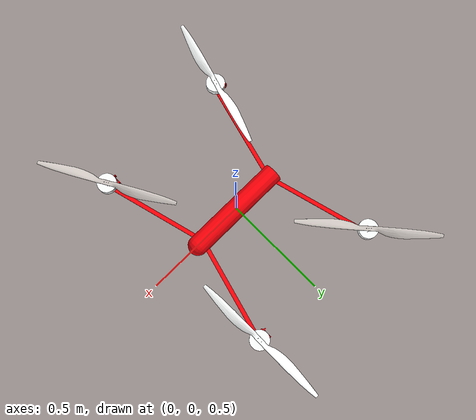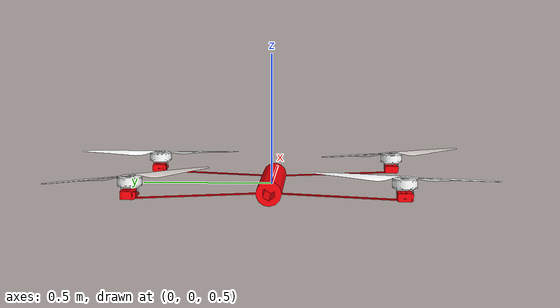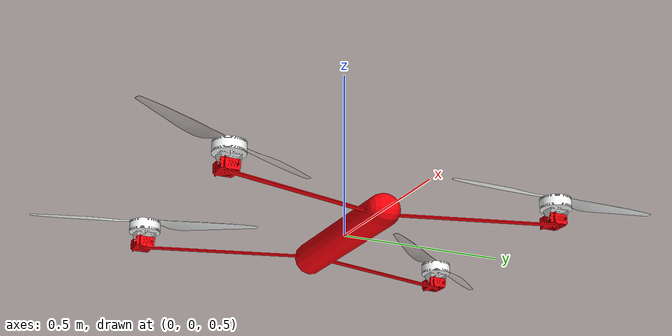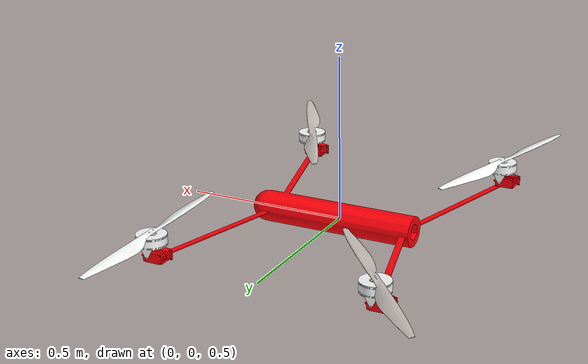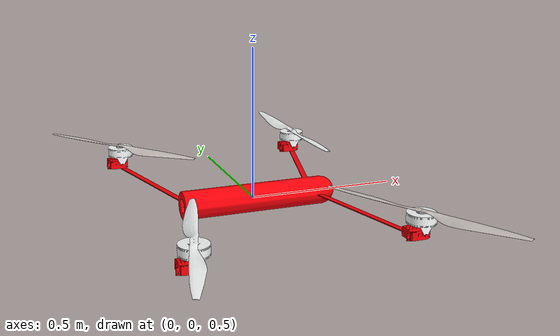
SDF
<sdf version='1.11'>
  <model name='MCTilt'>
    <link name='base_link'>
      <inertial>
        <pose>0.027452000000000001 0.0004910500450304307 0.50084027997368474 0 0 0</pose>
        <mass>11</mass>
        <inertia>
          <ixx>0.5</ixx>
          <ixy>-0.002301599999599837</ixy>
          <ixz>7.4672233422723444e-06</ixz>
          <iyy>0.52999999999886116</iyy>
          <iyz>-1.0614171776526529e-05</iyz>
          <izz>0.90000000000113878</izz>
        </inertia>
      </inertial>
      <collision name='base_link_fixed_joint_lump__drone_link_collision'>
        <pose>0 0 0.5 3.1415926000000001 0 0</pose>
        <geometry>
          <mesh>
            <scale>1 1 1</scale>
            <uri>model://mctilt/description/meshes/base_link.STL</uri>
          </mesh>
        </geometry>
      </collision>
      <visual name='base_link_fixed_joint_lump__drone_link_visual'>
        <pose>0 0 0.5 3.1415926000000001 0 0</pose>
        <geometry>
          <mesh>
            <scale>1 1 1</scale>
            <uri>model://mctilt/description/meshes/base_link.STL</uri>
          </mesh>
        </geometry>
        <material>
          <diffuse>1 0 0.0343137495 1</diffuse>
          <ambient>1 0 0.0343137495 1</ambient>
        </material>
      </visual>
      <sensor name='imu_sensor' type='imu'>
        <always_on>true</always_on>
        <update_rate>250</update_rate>
        <imu>
          <angular_velocity>
            <x>
              <noise type='gaussian'>
                <mean>0</mean>
                <stddev>0.00018665000000000001</stddev>
                <dynamic_bias_stddev>3.8785000000000002e-05</dynamic_bias_stddev>
                <dynamic_bias_correlation_time>1000</dynamic_bias_correlation_time>
              </noise>
            </x>
            <y>
              <noise type='gaussian'>
                <mean>0</mean>
                <stddev>0.00018665000000000001</stddev>
                <dynamic_bias_stddev>3.8785000000000002e-05</dynamic_bias_stddev>
                <dynamic_bias_correlation_time>1000</dynamic_bias_correlation_time>
              </noise>
            </y>
            <z>
              <noise type='gaussian'>
                <mean>0</mean>
                <stddev>0.00018665000000000001</stddev>
                <dynamic_bias_stddev>3.8785000000000002e-05</dynamic_bias_stddev>
                <dynamic_bias_correlation_time>1000</dynamic_bias_correlation_time>
              </noise>
            </z>
          </angular_velocity>
          <linear_acceleration>
            <x>
              <noise type='gaussian'>
                <mean>0</mean>
                <stddev>0.0018600000000000001</stddev>
                <dynamic_bias_stddev>0.0060000000000000001</dynamic_bias_stddev>
                <dynamic_bias_correlation_time>300</dynamic_bias_correlation_time>
              </noise>
            </x>
            <y>
              <noise type='gaussian'>
                <mean>0</mean>
                <stddev>0.0018600000000000001</stddev>
                <dynamic_bias_stddev>0.0060000000000000001</dynamic_bias_stddev>
                <dynamic_bias_correlation_time>300</dynamic_bias_correlation_time>
              </noise>
            </y>
            <z>
              <noise type='gaussian'>
                <mean>0</mean>
                <stddev>0.0018600000000000001</stddev>
                <dynamic_bias_stddev>0.0060000000000000001</dynamic_bias_stddev>
                <dynamic_bias_correlation_time>300</dynamic_bias_correlation_time>
              </noise>
            </z>
          </linear_acceleration>
        </imu>
        <pose>0 0 0.5 0 0 0</pose>
      </sensor>
      <sensor name='air_pressure_sensor' type='air_pressure'>
        <always_on>true</always_on>
        <update_rate>50</update_rate>
        <air_pressure>
          <pressure>
            <noise type='gaussian'>
              <mean>0</mean>
              <stddev>0.01</stddev>
            </noise>
          </pressure>
        </air_pressure>
        <pose>0 0 0.5 0 0 0</pose>
      </sensor>
      <sensor name='navsat_sensor' type='navsat'>
        <always_on>true</always_on>
        <update_rate>30</update_rate>
        <pose>0 0 0.5 0 0 0</pose>
      </sensor>
    </link>
    <joint name='servoJoint1' type='revolute'>
      <pose relative_to='base_link'>0.34150000000000003 -0.42158686875186091 0.51455002259275318
        1.570796280384771 2.6794896551551876e-08 0.52359877559829127</pose>
      <parent>base_link</parent>
      <child>servo_link1</child>
      <axis>
        <xyz>0.499999999999996 0 -0.86602540378444104</xyz>
        <limit>
          <lower>-inf</lower>
          <upper>inf</upper>
        </limit>
        <dynamics>
          <damping>2.5</damping>
          <friction>0</friction>
          <spring_reference>0</spring_reference>
          <spring_stiffness>0</spring_stiffness>
        </dynamics>
      </axis>
    </joint>
    <link name='servo_link1'>
      <pose relative_to='servoJoint1'>0 0 0 0 0 0</pose>
      <inertial>
        <pose>-0.030394161084991801 0.044362800205073799 0.052644161866179998 0 0 0</pose>
        <mass>0.2045176204237</mass>
        <inertia>
          <ixx>0.00011676716266782799</ixx>
          <ixy>-3.1115573759172102e-10</ixy>
          <ixz>1.14796079722263e-06</ixz>
          <iyy>0.00019759165397287</iyy>
          <iyz>3.3602938703528702e-10</iyz>
          <izz>0.000115441392663724</izz>
        </inertia>
      </inertial>
      <collision name='servo_link1_collision'>
        <pose>0 0 0 0 0 0</pose>
        <geometry>
          <mesh>
            <scale>1 1 1</scale>
            <uri>model://mctilt/description/meshes/servo_link1.STL</uri>
          </mesh>
        </geometry>
      </collision>
      <visual name='servo_link1_visual'>
        <pose>0 0 0 0 0 0</pose>
        <geometry>
          <mesh>
            <scale>1 1 1</scale>
            <uri>model://mctilt/description/meshes/servo_link1.STL</uri>
          </mesh>
        </geometry>
        <material>
          <diffuse>0.990196109 1 1 1</diffuse>
          <ambient>0.990196109 1 1 1</ambient>
        </material>
      </visual>
    </link>
    <joint name='prop_joint1' type='revolute'>
      <pose relative_to='servo_link1'>-0.0303940652342033 0.0500859736898727 0.052644065234203702
        -1.5707963000000003 -0.00180987006866113 0</pose>
      <parent>servo_link1</parent>
      <child>prop1</child>
      <axis>
        <xyz>0 0 1</xyz>
        <limit>
          <lower>-inf</lower>
          <upper>inf</upper>
        </limit>
        <dynamics>
          <spring_reference>0</spring_reference>
          <spring_stiffness>0</spring_stiffness>
        </dynamics>
      </axis>
    </joint>
    <link name='prop1'>
      <pose relative_to='prop_joint1'>0 0 0 0 0 0</pose>
      <inertial>
        <pose>3.0867990108429699e-09 0.0139527069710401 -3.4171043772346399e-09 1.5707963000000003 0
          0</pose>
        <mass>0.072762177004198902</mass>
        <inertia>
          <ixx>0.00216701471430116</ixx>
          <ixy>-4.74342285086133e-14</ixy>
          <ixz>7.2218875412027094e-05</ixz>
          <iyy>0.0021751198716782501</iyy>
          <iyz>5.8800230606604699e-14</iyz>
          <izz>9.3603438107692799e-06</izz>
        </inertia>
      </inertial>
      <collision name='prop1_collision'>
        <pose>0 0 0 1.5707963000000003 0 0</pose>
        <geometry>
          <mesh>
            <scale>1 1 1</scale>
            <uri>model://mctilt/description/meshes/prop1.STL</uri>
          </mesh>
        </geometry>
      </collision>
      <visual name='prop1_visual'>
        <pose>0 0 0 1.5707963000000003 0 0</pose>
        <geometry>
          <mesh>
            <scale>1 1 1</scale>
            <uri>model://mctilt/description/meshes/prop1.STL</uri>
          </mesh>
        </geometry>
        <material>
          <diffuse>0.799019635 0.769607902 0.75000006 1</diffuse>
          <ambient>0.799019635 0.769607902 0.75000006 1</ambient>
        </material>
      </visual>
    </link>
    <joint name='servoJoint2' type='revolute'>
      <pose relative_to='base_link'>-0.34150000000000003 0.42683687031132378 0.51454997712590045
        1.570796280384771 2.6794896551551876e-08 0.52359877559829127</pose>
      <parent>base_link</parent>
      <child>servo_link2</child>
      <axis>
        <xyz>0.499999999999995 0 -0.86602540378444104</xyz>
        <limit>
          <lower>-inf</lower>
          <upper>inf</upper>
        </limit>
        <dynamics>
          <damping>2.5</damping>
          <friction>0</friction>
          <spring_reference>0</spring_reference>
          <spring_stiffness>0</spring_stiffness>
        </dynamics>
      </axis>
    </joint>
    <link name='servo_link2'>
      <pose relative_to='servoJoint2'>0 0 0 0 0 0</pose>
      <inertial>
        <pose>0.030393969383415001 0.044362800205073799 -0.0526439686022276 0 0 0</pose>
        <mass>0.204517620423701</mass>
        <inertia>
          <ixx>0.00011676716266782799</ixx>
          <ixy>-3.1115573760911399e-10</ixy>
          <ixz>1.14796079722276e-06</ixz>
          <iyy>0.00019759165397287</iyy>
          <iyz>3.3602938703319901e-10</iyz>
          <izz>0.000115441392663724</izz>
        </inertia>
      </inertial>
      <collision name='servo_link2_collision'>
        <pose>0 0 0 0 0 0</pose>
        <geometry>
          <mesh>
            <scale>1 1 1</scale>
            <uri>model://mctilt/description/meshes/servo_link2.STL</uri>
          </mesh>
        </geometry>
      </collision>
      <visual name='servo_link2_visual'>
        <pose>0 0 0 0 0 0</pose>
        <geometry>
          <mesh>
            <scale>1 1 1</scale>
            <uri>model://mctilt/description/meshes/servo_link2.STL</uri>
          </mesh>
        </geometry>
        <material>
          <diffuse>0.990196109 1 1 1</diffuse>
          <ambient>0.990196109 1 1 1</ambient>
        </material>
      </visual>
    </link>
    <joint name='prop_joint2' type='revolute'>
      <pose relative_to='servo_link2'>0.0303940652342033 0.050085973689872797 -0.052644065234203702
        -1.5707963 0.18952959701793301 1.413082904031325e-17</pose>
      <parent>servo_link2</parent>
      <child>prop2</child>
      <axis>
        <xyz>0 0 1</xyz>
        <limit>
          <lower>-inf</lower>
          <upper>inf</upper>
        </limit>
        <dynamics>
          <spring_reference>0</spring_reference>
          <spring_stiffness>0</spring_stiffness>
        </dynamics>
      </axis>
    </joint>
    <link name='prop2'>
      <pose relative_to='prop_joint2'>0 0 0 0 0 0</pose>
      <inertial>
        <pose>3.7681505693498699e-09 0.013952818399974001 -3.8498872978465199e-09 1.5707963000000003
          0 0</pose>
        <mass>0.072764668272949501</mass>
        <inertia>
          <ixx>0.0021670147183279801</ixx>
          <ixy>-1.8902575953538199e-13</ixy>
          <ixz>7.2218861755525004e-05</ixz>
          <iyy>0.0021751198746171102</iyy>
          <iyz>1.8643502885731999e-13</iyz>
          <izz>9.3603414076551105e-06</izz>
        </inertia>
      </inertial>
      <collision name='prop2_collision'>
        <pose>0 0 0 1.5707963000000003 0 0</pose>
        <geometry>
          <mesh>
            <scale>1 1 1</scale>
            <uri>model://mctilt/description/meshes/prop2.STL</uri>
          </mesh>
        </geometry>
      </collision>
      <visual name='prop2_visual'>
        <pose>0 0 0 1.5707963000000003 0 0</pose>
        <geometry>
          <mesh>
            <scale>1 1 1</scale>
            <uri>model://mctilt/description/meshes/prop2.STL</uri>
          </mesh>
        </geometry>
        <material>
          <diffuse>0.799019635 0.769607902 0.75000006 1</diffuse>
          <ambient>0.799019635 0.769607902 0.75000006 1</ambient>
        </material>
      </visual>
    </link>
    <joint name='servoJoint3' type='revolute'>
      <pose relative_to='base_link'>0.34150000000000003 0.42683687031132278 0.51454997712590045
        1.5707962803847713 2.67948965237963e-08 0.52359877559829948</pose>
      <parent>base_link</parent>
      <child>servo_link3</child>
      <axis>
        <xyz>0.500000000000001 0 -0.86602540378443804</xyz>
        <limit>
          <lower>-inf</lower>
          <upper>inf</upper>
        </limit>
        <dynamics>
          <damping>2.5</damping>
          <friction>0</friction>
          <spring_reference>0</spring_reference>
          <spring_stiffness>0</spring_stiffness>
        </dynamics>
      </axis>
    </joint>
    <link name='servo_link3'>
      <pose relative_to='servoJoint3'>0 0 0 0 0 0</pose>
      <inertial>
        <pose>0.0303939693834154 0.044362800205073799 -0.052643968602227399 0 0 0</pose>
        <mass>0.204517620423701</mass>
        <inertia>
          <ixx>0.00011676716266782799</ixx>
          <ixy>-3.11155737604026e-10</ixy>
          <ixz>1.14796079722276e-06</ixz>
          <iyy>0.00019759165397287</iyy>
          <iyz>3.3602938703638102e-10</iyz>
          <izz>0.000115441392663724</izz>
        </inertia>
      </inertial>
      <collision name='servo_link3_collision'>
        <pose>0 0 0 0 0 0</pose>
        <geometry>
          <mesh>
            <scale>1 1 1</scale>
            <uri>model://mctilt/description/meshes/servo_link3.STL</uri>
          </mesh>
        </geometry>
      </collision>
      <visual name='servo_link3_visual'>
        <pose>0 0 0 0 0 0</pose>
        <geometry>
          <mesh>
            <scale>1 1 1</scale>
            <uri>model://mctilt/description/meshes/servo_link3.STL</uri>
          </mesh>
        </geometry>
        <material>
          <diffuse>0.990196109 1 1 1</diffuse>
          <ambient>0.990196109 1 1 1</ambient>
        </material>
      </visual>
    </link>
    <joint name='prop_joint3' type='revolute'>
      <pose relative_to='servo_link3'>0.030394065234204001 0.050085974728011198
        -0.052644065234203598 -1.5707963 -0.52359877559830015 -6.4098756212785522e-17</pose>
      <parent>servo_link3</parent>
      <child>prop3</child>
      <axis>
        <xyz>0 0 1</xyz>
        <limit>
          <lower>-inf</lower>
          <upper>inf</upper>
        </limit>
        <dynamics>
          <spring_reference>0</spring_reference>
          <spring_stiffness>0</spring_stiffness>
        </dynamics>
      </axis>
    </joint>
    <link name='prop3'>
      <pose relative_to='prop_joint3'>0 0 0 0 0 0</pose>
      <inertial>
        <pose>3.1377229148255001e-09 0.013952877366110301 2.4213650529070199e-09 1.5707963000000003
          0 0</pose>
        <mass>0.072767849642281501</mass>
        <inertia>
          <ixx>0.0021668533210580099</ixx>
          <ixy>-4.86407508772476e-14</ixy>
          <ixz>-7.2227415343871395e-05</ixz>
          <iyy>0.0021749597734904802</iyy>
          <iyz>-6.2438276025275701e-14</iyz>
          <izz>9.3617923756397901e-06</izz>
        </inertia>
      </inertial>
      <collision name='prop3_collision'>
        <pose>0 0 0 1.5707963000000003 0 0</pose>
        <geometry>
          <mesh>
            <scale>1 1 1</scale>
            <uri>model://mctilt/description/meshes/prop3.STL</uri>
          </mesh>
        </geometry>
      </collision>
      <visual name='prop3_visual'>
        <pose>0 0 0 1.5707963000000003 0 0</pose>
        <geometry>
          <mesh>
            <scale>1 1 1</scale>
            <uri>model://mctilt/description/meshes/prop3.STL</uri>
          </mesh>
        </geometry>
        <material>
          <diffuse>0.990196109 1 1 1</diffuse>
          <ambient>0.990196109 1 1 1</ambient>
        </material>
      </visual>
    </link>
    <joint name='servoJoint4' type='revolute'>
      <pose relative_to='base_link'>-0.34150000000000003 -0.42158686875186091 0.51455002259275318
        1.570796280384771 2.6794896551551876e-08 0.52359877559829127</pose>
      <parent>base_link</parent>
      <child>servo_link4</child>
      <axis>
        <xyz>0.499999999999995 0 -0.86602540378444104</xyz>
        <limit>
          <lower>-inf</lower>
          <upper>inf</upper>
        </limit>
        <dynamics>
          <damping>2.5</damping>
          <friction>0</friction>
          <spring_reference>0</spring_reference>
          <spring_stiffness>0</spring_stiffness>
        </dynamics>
      </axis>
    </joint>
    <link name='servo_link4'>
      <pose relative_to='servoJoint4'>0 0 0 0 0 0</pose>
      <inertial>
        <pose>-0.030394161084991701 0.044362800205073799 0.052644161866179998 0 0 0</pose>
        <mass>0.204517620423701</mass>
        <inertia>
          <ixx>0.00011676716266782799</ixx>
          <ixy>-3.11155737595278e-10</ixy>
          <ixz>1.14796079722271e-06</ixz>
          <iyy>0.00019759165397287</iyy>
          <iyz>3.3602938703834702e-10</iyz>
          <izz>0.000115441392663724</izz>
        </inertia>
      </inertial>
      <collision name='servo_link4_collision'>
        <pose>0 0 0 0 0 0</pose>
        <geometry>
          <mesh>
            <scale>1 1 1</scale>
            <uri>model://mctilt/description/meshes/servo_link4.STL</uri>
          </mesh>
        </geometry>
      </collision>
      <visual name='servo_link4_visual'>
        <pose>0 0 0 0 0 0</pose>
        <geometry>
          <mesh>
            <scale>1 1 1</scale>
            <uri>model://mctilt/description/meshes/servo_link4.STL</uri>
          </mesh>
        </geometry>
        <material>
          <diffuse>0.990196109 1 1 1</diffuse>
          <ambient>0.990196109 1 1 1</ambient>
        </material>
      </visual>
    </link>
    <joint name='prop_joint4' type='revolute'>
      <pose relative_to='servo_link4'>-0.030394065234203502 0.050085974728011302
        0.052644065234203799 -1.5707963 -0.81414466647190353 -8.086221718363927e-17</pose>
      <parent>servo_link4</parent>
      <child>prop4</child>
      <axis>
        <xyz>0 0 1</xyz>
        <limit>
          <lower>-inf</lower>
          <upper>inf</upper>
        </limit>
        <dynamics>
          <spring_reference>0</spring_reference>
          <spring_stiffness>0</spring_stiffness>
        </dynamics>
      </axis>
    </joint>
    <link name='prop4'>
      <pose relative_to='prop_joint4'>0 0 0 0 0 0</pose>
      <inertial>
        <pose>2.4743714577279999e-09 0.0139529396951849 2.6727747792776301e-09 1.5707963000000003 0
          0</pose>
        <mass>0.072766996821120006</mass>
        <inertia>
          <ixx>0.00216683771147092</ixx>
          <ixy>4.7803281297555801e-14</ixy>
          <ixz>-7.2224978952527906e-05</ixz>
          <iyy>0.0021749436996880301</iyy>
          <iyz>1.702798141578e-14</iyz>
          <izz>9.36126384583394e-06</izz>
        </inertia>
      </inertial>
      <collision name='prop4_collision'>
        <pose>0 0 0 1.5707963000000003 0 0</pose>
        <geometry>
          <mesh>
            <scale>1 1 1</scale>
            <uri>model://mctilt/description/meshes/prop4.STL</uri>
          </mesh>
        </geometry>
      </collision>
      <visual name='prop4_visual'>
        <pose>0 0 0 1.5707963000000003 0 0</pose>
        <geometry>
          <mesh>
            <scale>1 1 1</scale>
            <uri>model://mctilt/description/meshes/prop4.STL</uri>
          </mesh>
        </geometry>
        <material>
          <diffuse>0.990196109 1 1 1</diffuse>
          <ambient>0.990196109 1 1 1</ambient>
        </material>
      </visual>
    </link>
    <plugin name='gz::sim::systems::MulticopterMotorModel'
      filename='gz-sim-multicopter-motor-model-system'>
      <jointName>prop_joint1</jointName>
      <linkName>prop1</linkName>
      <turningDirection>ccw</turningDirection>
      <timeConstantUp>0.0125</timeConstantUp>
      <timeConstantDown>0.025</timeConstantDown>
      <maxRotVelocity>1000.0</maxRotVelocity>
      <motorConstant>3e-04</motorConstant>
      <momentConstant>0.029</momentConstant>
      <commandSubTopic>command/motor_speed</commandSubTopic>
      <motorNumber>0</motorNumber>
      <rotorDragCoefficient>8.06428e-05</rotorDragCoefficient>
      <rollingMomentCoefficient>8.7e-06</rollingMomentCoefficient>
      <rotorVelocitySlowdownSim>20</rotorVelocitySlowdownSim>
      <motorType>velocity</motorType>
    </plugin>
    <plugin name='gz::sim::systems::MulticopterMotorModel'
      filename='gz-sim-multicopter-motor-model-system'>
      <jointName>prop_joint2</jointName>
      <linkName>prop2</linkName>
      <turningDirection>ccw</turningDirection>
      <timeConstantUp>0.0125</timeConstantUp>
      <timeConstantDown>0.025</timeConstantDown>
      <maxRotVelocity>1000.0</maxRotVelocity>
      <motorConstant>3e-04</motorConstant>
      <momentConstant>0.029</momentConstant>
      <commandSubTopic>command/motor_speed</commandSubTopic>
      <motorNumber>1</motorNumber>
      <rotorDragCoefficient>8.06428e-05</rotorDragCoefficient>
      <rollingMomentCoefficient>8.7e-06</rollingMomentCoefficient>
      <rotorVelocitySlowdownSim>20</rotorVelocitySlowdownSim>
      <motorType>velocity</motorType>
    </plugin>
    <plugin name='gz::sim::systems::MulticopterMotorModel'
      filename='gz-sim-multicopter-motor-model-system'>
      <jointName>prop_joint3</jointName>
      <linkName>prop3</linkName>
      <turningDirection>cw</turningDirection>
      <timeConstantUp>0.0125</timeConstantUp>
      <timeConstantDown>0.025</timeConstantDown>
      <maxRotVelocity>1000.0</maxRotVelocity>
      <motorConstant>3e-4</motorConstant>
      <momentConstant>0.029</momentConstant>
      <commandSubTopic>command/motor_speed</commandSubTopic>
      <motorNumber>2</motorNumber>
      <rotorDragCoefficient>8.06428e-05</rotorDragCoefficient>
      <rollingMomentCoefficient>8.7e-06</rollingMomentCoefficient>
      <rotorVelocitySlowdownSim>20</rotorVelocitySlowdownSim>
      <motorType>velocity</motorType>
    </plugin>
    <plugin name='gz::sim::systems::MulticopterMotorModel'
      filename='gz-sim-multicopter-motor-model-system'>
      <jointName>prop_joint4</jointName>
      <linkName>prop4</linkName>
      <turningDirection>cw</turningDirection>
      <timeConstantUp>0.0125</timeConstantUp>
      <timeConstantDown>0.025</timeConstantDown>
      <maxRotVelocity>1000.0</maxRotVelocity>
      <motorConstant>3e-4</motorConstant>
      <momentConstant>0.029</momentConstant>
      <commandSubTopic>command/motor_speed</commandSubTopic>
      <motorNumber>3</motorNumber>
      <rotorDragCoefficient>8.06428e-05</rotorDragCoefficient>
      <rollingMomentCoefficient>8.7e-06</rollingMomentCoefficient>
      <rotorVelocitySlowdownSim>20</rotorVelocitySlowdownSim>
      <motorType>velocity</motorType>
    </plugin>
    <plugin name='gz::sim::systems::JointStatePublisher'
      filename='gz-sim-joint-state-publisher-system' />
    <plugin name='gz::sim::systems::JointPositionController'
      filename='gz-sim-joint-position-controller-system'>
      <joint_name>servoJoint1</joint_name>
      <initial_position>0</initial_position>
      <p_gain>7</p_gain>
      <sub_topic>servo_0</sub_topic>
    </plugin>
    <plugin name='gz::sim::systems::JointPositionController'
      filename='gz-sim-joint-position-controller-system'>
      <joint_name>servoJoint2</joint_name>
      <initial_position>0</initial_position>
      <p_gain>7</p_gain>
      <sub_topic>servo_1</sub_topic>
    </plugin>
    <plugin name='gz::sim::systems::JointPositionController'
      filename='gz-sim-joint-position-controller-system'>
      <joint_name>servoJoint3</joint_name>
      <initial_position>0</initial_position>
      <p_gain>7</p_gain>
      <sub_topic>servo_2</sub_topic>
    </plugin>
    <plugin name='gz::sim::systems::JointPositionController'
      filename='gz-sim-joint-position-controller-system'>
      <joint_name>servoJoint4</joint_name>
      <initial_position>0</initial_position>
      <p_gain>7</p_gain>
      <sub_topic>servo_3</sub_topic>
    </plugin>
    <frame name='base_joint' attached_to='base_link'>
      <pose>0 0 0.5 3.1415926000000001 0 0</pose>
    </frame>
    <frame name='drone_link' attached_to='base_joint'>
      <pose>0 0 0 0 0 0</pose>
    </frame>
  </model>
</sdf>
